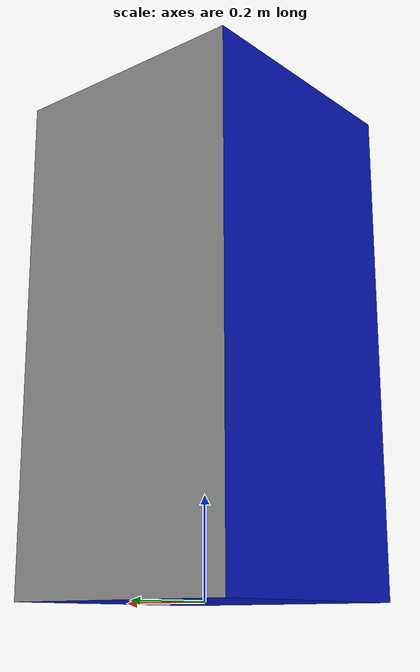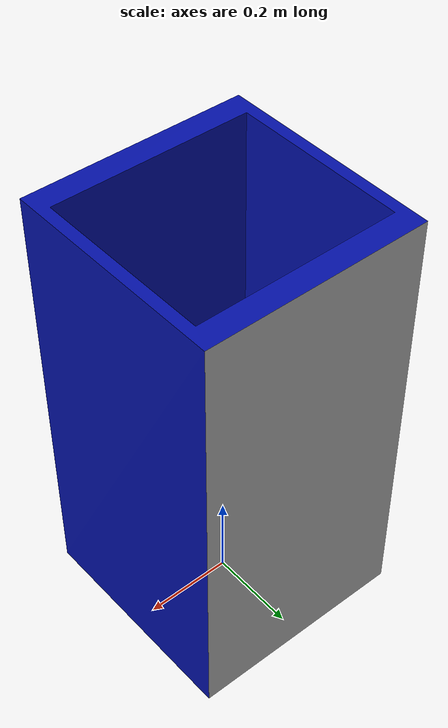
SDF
<?xml version='1.0'?>
<sdf version='1.6'>
  <model name='kitchen'>
    <link name='link_0'>
      <inertial>
        <mass>1</mass>
        <inertia>
          <ixx>0.166667</ixx>
          <ixy>0</ixy>
          <ixz>0</ixz>
          <iyy>0.166667</iyy>
          <iyz>0</iyz>
          <izz>0.166667</izz>
        </inertia>
        <pose frame=''>0 0 0 0 -0 0</pose>
      </inertial>
      <pose frame=''>0 0 -0 0 -0 0</pose>
      <self_collide>0</self_collide>
      <enable_wind>0</enable_wind>
      <kinematic>0</kinematic>
      <gravity>1</gravity>
      <visual name='visual'>
        <pose frame=''>0 0 0 0 -0 0</pose>
        <geometry>
          <mesh>
            <uri>$(find initial_pose)/models/model_res/kitchen/rubbish_bin.dae</uri>
            <scale>0.5 0.5 0.5</scale>
          </mesh>
        </geometry>
        <transparency>0</transparency>
        <cast_shadows>1</cast_shadows>
        <material>
          <shader type='vertex'>
            <normal_map>__default__</normal_map>
          </shader>
        </material>
      </visual>
      <collision name='collision'>
        <laser_retro>0</laser_retro>
        <max_contacts>10</max_contacts>
        <pose frame=''>0 0 0 0 -0 0</pose>
        <geometry>
          <mesh>
            <uri>$(find initial_pose)/models/model_res/kitchen/rubbish_bin.dae</uri>
            <scale>0.5 0.5 0.5</scale>
          </mesh>
        </geometry>
        <surface>
          <friction>
            <ode>
              <mu>1</mu>
              <mu2>1</mu2>
              <fdir1>0 0 0</fdir1>
              <slip1>0</slip1>
              <slip2>0</slip2>
            </ode>
            <torsional>
              <coefficient>1</coefficient>
              <patch_radius>0</patch_radius>
              <surface_radius>0</surface_radius>
              <use_patch_radius>1</use_patch_radius>
              <ode>
                <slip>0</slip>
              </ode>
            </torsional>
          </friction>
          <bounce>
            <restitution_coefficient>0</restitution_coefficient>
            <threshold>1e+06</threshold>
          </bounce>
          <contact>
            <collide_without_contact>0</collide_without_contact>
            <collide_without_contact_bitmask>1</collide_without_contact_bitmask>
            <collide_bitmask>1</collide_bitmask>
            <ode>
              <soft_cfm>0</soft_cfm>
              <soft_erp>0.2</soft_erp>
              <kp>1e+13</kp>
              <kd>1</kd>
              <max_vel>0.01</max_vel>
              <min_depth>0</min_depth>
            </ode>
            <bullet>
              <split_impulse>1</split_impulse>
              <split_impulse_penetration_threshold>-0.01</split_impulse_penetration_threshold>
              <soft_cfm>0</soft_cfm>
              <soft_erp>0.2</soft_erp>
              <kp>1e+13</kp>
              <kd>1</kd>
            </bullet>
          </contact>
        </surface>
      </collision>
    </link>
    <static>1</static>
    <allow_auto_disable>0</allow_auto_disable>
  </model>
</sdf>
